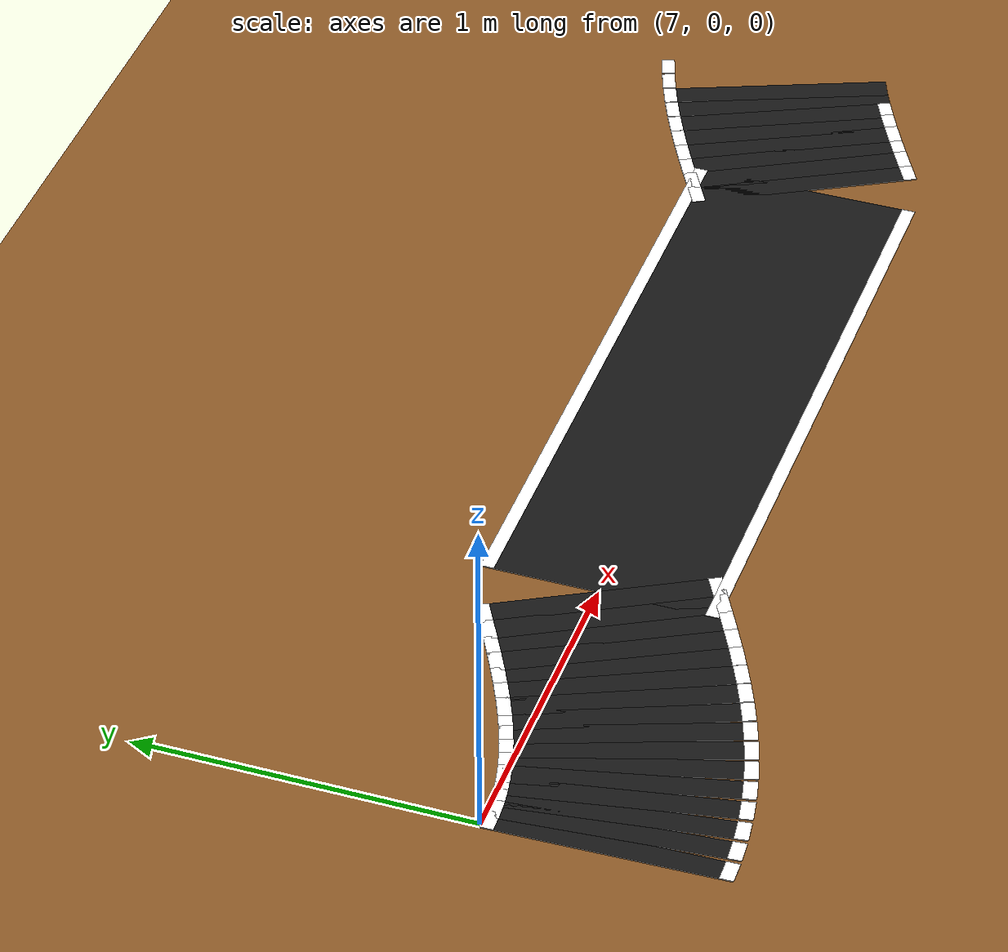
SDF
<sdf version="1.9">
 <world name="lka_world">
  <model name="ground_plane">
   <static>true</static>
   <link name="link">
    <collision name="col">
     <geometry><plane><normal>0 0 1</normal><size>100 100</size></plane></geometry>
     <surface><friction><ode><mu>0.8</mu><mu2>0.8</mu2></ode></friction></surface>
    </collision>
    <visual name="vis">
     <geometry><plane><normal>0 0 1</normal><size>100 100</size></plane></geometry>
     <material><ambient>0.45 0.28 0.10 1</ambient><diffuse>0.55 0.35 0.15 1</diffuse></material>
    </visual>
   </link>
  </model>
  <model name="c2_road_16">
   <static>true</static>
   <pose>7.031250 -0.349578 0.001000 0.000000 0.000000 0.026969</pose>
   <link name="link">
    <collision name="col">
     <geometry><box><size>0.068523 0.700000 0.002000</size></box></geometry>
     <surface><friction><ode><mu>1.0</mu><mu2>1.0</mu2></ode></friction></surface>
    </collision>
    <visual name="vis">
     <geometry><box><size>0.068523 0.700000 0.002000</size></box></geometry>
     <material><ambient>0.06 0.06 0.06 1</ambient><diffuse>0.09 0.09 0.09 1</diffuse></material>
    </visual>
   </link>
  </model>
  <model name="c2_left_16">
   <static>true</static>
   <pose>7.022351 -0.019698 0.002000 0.000000 0.000000 0.026969</pose>
   <link name="link">
    <collision name="col">
     <geometry><box><size>0.068523 0.040000 0.003000</size></box></geometry>
     <surface><friction><ode><mu>1.0</mu><mu2>1.0</mu2></ode></friction></surface>
    </collision>
    <visual name="vis">
     <geometry><box><size>0.068523 0.040000 0.003000</size></box></geometry>
     <material><ambient>1.0 1.0 1.0 1</ambient><diffuse>1.0 1.0 1.0 1</diffuse></material>
    </visual>
   </link>
  </model>
  <model name="c2_right_16">
   <static>true</static>
   <pose>7.040149 -0.679458 0.002000 0.000000 0.000000 0.026969</pose>
   <link name="link">
    <collision name="col">
     <geometry><box><size>0.068523 0.040000 0.003000</size></box></geometry>
     <surface><friction><ode><mu>1.0</mu><mu2>1.0</mu2></ode></friction></surface>
    </collision>
    <visual name="vis">
     <geometry><box><size>0.068523 0.040000 0.003000</size></box></geometry>
     <material><ambient>1.0 1.0 1.0 1</ambient><diffuse>1.0 1.0 1.0 1</diffuse></material>
    </visual>
   </link>
  </model>
  <model name="c2_road_17">
   <static>true</static>
   <pose>7.093750 -0.346212 0.001000 0.000000 0.000000 0.080494</pose>
   <link name="link">
    <collision name="col">
     <geometry><box><size>0.068703 0.700000 0.002000</size></box></geometry>
     <surface><friction><ode><mu>1.0</mu><mu2>1.0</mu2></ode></friction></surface>
    </collision>
    <visual name="vis">
     <geometry><box><size>0.068703 0.700000 0.002000</size></box></geometry>
     <material><ambient>0.06 0.06 0.06 1</ambient><diffuse>0.09 0.09 0.09 1</diffuse></material>
    </visual>
   </link>
  </model>
  <model name="c2_left_17">
   <static>true</static>
   <pose>7.067216 -0.017280 0.002000 0.000000 0.000000 0.080494</pose>
   <link name="link">
    <collision name="col">
     <geometry><box><size>0.068703 0.040000 0.003000</size></box></geometry>
     <surface><friction><ode><mu>1.0</mu><mu2>1.0</mu2></ode></friction></surface>
    </collision>
    <visual name="vis">
     <geometry><box><size>0.068703 0.040000 0.003000</size></box></geometry>
     <material><ambient>1.0 1.0 1.0 1</ambient><diffuse>1.0 1.0 1.0 1</diffuse></material>
    </visual>
   </link>
  </model>
  <model name="c2_right_17">
   <static>true</static>
   <pose>7.120284 -0.675143 0.002000 0.000000 0.000000 0.080494</pose>
   <link name="link">
    <collision name="col">
     <geometry><box><size>0.068703 0.040000 0.003000</size></box></geometry>
     <surface><friction><ode><mu>1.0</mu><mu2>1.0</mu2></ode></friction></surface>
    </collision>
    <visual name="vis">
     <geometry><box><size>0.068703 0.040000 0.003000</size></box></geometry>
     <material><ambient>1.0 1.0 1.0 1</ambient><diffuse>1.0 1.0 1.0 1</diffuse></material>
    </visual>
   </link>
  </model>
  <model name="c2_road_18">
   <static>true</static>
   <pose>7.156250 -0.339511 0.001000 0.000000 0.000000 0.132797</pose>
   <link name="link">
    <collision name="col">
     <geometry><box><size>0.069055 0.700000 0.002000</size></box></geometry>
     <surface><friction><ode><mu>1.0</mu><mu2>1.0</mu2></ode></friction></surface>
    </collision>
    <visual name="vis">
     <geometry><box><size>0.069055 0.700000 0.002000</size></box></geometry>
     <material><ambient>0.06 0.06 0.06 1</ambient><diffuse>0.09 0.09 0.09 1</diffuse></material>
    </visual>
   </link>
  </model>
  <model name="c2_left_18">
   <static>true</static>
   <pose>7.112556 -0.012416 0.002000 0.000000 0.000000 0.132797</pose>
   <link name="link">
    <collision name="col">
     <geometry><box><size>0.069055 0.040000 0.003000</size></box></geometry>
     <surface><friction><ode><mu>1.0</mu><mu2>1.0</mu2></ode></friction></surface>
    </collision>
    <visual name="vis">
     <geometry><box><size>0.069055 0.040000 0.003000</size></box></geometry>
     <material><ambient>1.0 1.0 1.0 1</ambient><diffuse>1.0 1.0 1.0 1</diffuse></material>
    </visual>
   </link>
  </model>
  <model name="c2_right_18">
   <static>true</static>
   <pose>7.199944 -0.666605 0.002000 0.000000 0.000000 0.132797</pose>
   <link name="link">
    <collision name="col">
     <geometry><box><size>0.069055 0.040000 0.003000</size></box></geometry>
     <surface><friction><ode><mu>1.0</mu><mu2>1.0</mu2></ode></friction></surface>
    </collision>
    <visual name="vis">
     <geometry><box><size>0.069055 0.040000 0.003000</size></box></geometry>
     <material><ambient>1.0 1.0 1.0 1</ambient><diffuse>1.0 1.0 1.0 1</diffuse></material>
    </visual>
   </link>
  </model>
  <model name="c2_road_19">
   <static>true</static>
   <pose>7.218750 -0.329540 0.001000 0.000000 0.000000 0.183137</pose>
   <link name="link">
    <collision name="col">
     <geometry><box><size>0.069562 0.700000 0.002000</size></box></geometry>
     <surface><friction><ode><mu>1.0</mu><mu2>1.0</mu2></ode></friction></surface>
    </collision>
    <visual name="vis">
     <geometry><box><size>0.069562 0.700000 0.002000</size></box></geometry>
     <material><ambient>0.06 0.06 0.06 1</ambient><diffuse>0.09 0.09 0.09 1</diffuse></material>
    </visual>
   </link>
  </model>
  <model name="c2_left_19">
   <static>true</static>
   <pose>7.158652 -0.005059 0.002000 0.000000 0.000000 0.183137</pose>
   <link name="link">
    <collision name="col">
     <geometry><box><size>0.069562 0.040000 0.003000</size></box></geometry>
     <surface><friction><ode><mu>1.0</mu><mu2>1.0</mu2></ode></friction></surface>
    </collision>
    <visual name="vis">
     <geometry><box><size>0.069562 0.040000 0.003000</size></box></geometry>
     <material><ambient>1.0 1.0 1.0 1</ambient><diffuse>1.0 1.0 1.0 1</diffuse></material>
    </visual>
   </link>
  </model>
  <model name="c2_right_19">
   <static>true</static>
   <pose>7.278848 -0.654022 0.002000 0.000000 0.000000 0.183137</pose>
   <link name="link">
    <collision name="col">
     <geometry><box><size>0.069562 0.040000 0.003000</size></box></geometry>
     <surface><friction><ode><mu>1.0</mu><mu2>1.0</mu2></ode></friction></surface>
    </collision>
    <visual name="vis">
     <geometry><box><size>0.069562 0.040000 0.003000</size></box></geometry>
     <material><ambient>1.0 1.0 1.0 1</ambient><diffuse>1.0 1.0 1.0 1</diffuse></material>
    </visual>
   </link>
  </model>
  <model name="c2_road_20">
   <static>true</static>
   <pose>7.281250 -0.316396 0.001000 0.000000 0.000000 0.230866</pose>
   <link name="link">
    <collision name="col">
     <geometry><box><size>0.070202 0.700000 0.002000</size></box></geometry>
     <surface><friction><ode><mu>1.0</mu><mu2>1.0</mu2></ode></friction></surface>
    </collision>
    <visual name="vis">
     <geometry><box><size>0.070202 0.700000 0.002000</size></box></geometry>
     <material><ambient>0.06 0.06 0.06 1</ambient><diffuse>0.09 0.09 0.09 1</diffuse></material>
    </visual>
   </link>
  </model>
  <model name="c2_left_20">
   <static>true</static>
   <pose>7.205739 0.004848 0.002000 0.000000 0.000000 0.230866</pose>
   <link name="link">
    <collision name="col">
     <geometry><box><size>0.070202 0.040000 0.003000</size></box></geometry>
     <surface><friction><ode><mu>1.0</mu><mu2>1.0</mu2></ode></friction></surface>
    </collision>
    <visual name="vis">
     <geometry><box><size>0.070202 0.040000 0.003000</size></box></geometry>
     <material><ambient>1.0 1.0 1.0 1</ambient><diffuse>1.0 1.0 1.0 1</diffuse></material>
    </visual>
   </link>
  </model>
  <model name="c2_right_20">
   <static>true</static>
   <pose>7.356761 -0.637641 0.002000 0.000000 0.000000 0.230866</pose>
   <link name="link">
    <collision name="col">
     <geometry><box><size>0.070202 0.040000 0.003000</size></box></geometry>
     <surface><friction><ode><mu>1.0</mu><mu2>1.0</mu2></ode></friction></surface>
    </collision>
    <visual name="vis">
     <geometry><box><size>0.070202 0.040000 0.003000</size></box></geometry>
     <material><ambient>1.0 1.0 1.0 1</ambient><diffuse>1.0 1.0 1.0 1</diffuse></material>
    </visual>
   </link>
  </model>
  <model name="c2_road_21">
   <static>true</static>
   <pose>7.343750 -0.300205 0.001000 0.000000 0.000000 0.275453</pose>
   <link name="link">
    <collision name="col">
     <geometry><box><size>0.070947 0.700000 0.002000</size></box></geometry>
     <surface><friction><ode><mu>1.0</mu><mu2>1.0</mu2></ode></friction></surface>
    </collision>
    <visual name="vis">
     <geometry><box><size>0.070947 0.700000 0.002000</size></box></geometry>
     <material><ambient>0.06 0.06 0.06 1</ambient><diffuse>0.09 0.09 0.09 1</diffuse></material>
    </visual>
   </link>
  </model>
  <model name="c2_left_21">
   <static>true</static>
   <pose>7.253996 0.017355 0.002000 0.000000 0.000000 0.275453</pose>
   <link name="link">
    <collision name="col">
     <geometry><box><size>0.070947 0.040000 0.003000</size></box></geometry>
     <surface><friction><ode><mu>1.0</mu><mu2>1.0</mu2></ode></friction></surface>
    </collision>
    <visual name="vis">
     <geometry><box><size>0.070947 0.040000 0.003000</size></box></geometry>
     <material><ambient>1.0 1.0 1.0 1</ambient><diffuse>1.0 1.0 1.0 1</diffuse></material>
    </visual>
   </link>
  </model>
  <model name="c2_right_21">
   <static>true</static>
   <pose>7.433504 -0.617765 0.002000 0.000000 0.000000 0.275453</pose>
   <link name="link">
    <collision name="col">
     <geometry><box><size>0.070947 0.040000 0.003000</size></box></geometry>
     <surface><friction><ode><mu>1.0</mu><mu2>1.0</mu2></ode></friction></surface>
    </collision>
    <visual name="vis">
     <geometry><box><size>0.070947 0.040000 0.003000</size></box></geometry>
     <material><ambient>1.0 1.0 1.0 1</ambient><diffuse>1.0 1.0 1.0 1</diffuse></material>
    </visual>
   </link>
  </model>
  <model name="c2_road_22">
   <static>true</static>
   <pose>7.406250 -0.281123 0.001000 0.000000 0.000000 0.316489</pose>
   <link name="link">
    <collision name="col">
     <geometry><box><size>0.071764 0.700000 0.002000</size></box></geometry>
     <surface><friction><ode><mu>1.0</mu><mu2>1.0</mu2></ode></friction></surface>
    </collision>
    <visual name="vis">
     <geometry><box><size>0.071764 0.700000 0.002000</size></box></geometry>
     <material><ambient>0.06 0.06 0.06 1</ambient><diffuse>0.09 0.09 0.09 1</diffuse></material>
    </visual>
   </link>
  </model>
  <model name="c2_left_22">
   <static>true</static>
   <pose>7.303543 0.032488 0.002000 0.000000 0.000000 0.316489</pose>
   <link name="link">
    <collision name="col">
     <geometry><box><size>0.071764 0.040000 0.003000</size></box></geometry>
     <surface><friction><ode><mu>1.0</mu><mu2>1.0</mu2></ode></friction></surface>
    </collision>
    <visual name="vis">
     <geometry><box><size>0.071764 0.040000 0.003000</size></box></geometry>
     <material><ambient>1.0 1.0 1.0 1</ambient><diffuse>1.0 1.0 1.0 1</diffuse></material>
    </visual>
   </link>
  </model>
  <model name="c2_right_22">
   <static>true</static>
   <pose>7.508957 -0.594733 0.002000 0.000000 0.000000 0.316489</pose>
   <link name="link">
    <collision name="col">
     <geometry><box><size>0.071764 0.040000 0.003000</size></box></geometry>
     <surface><friction><ode><mu>1.0</mu><mu2>1.0</mu2></ode></friction></surface>
    </collision>
    <visual name="vis">
     <geometry><box><size>0.071764 0.040000 0.003000</size></box></geometry>
     <material><ambient>1.0 1.0 1.0 1</ambient><diffuse>1.0 1.0 1.0 1</diffuse></material>
    </visual>
   </link>
  </model>
  <model name="c2_road_23">
   <static>true</static>
   <pose>7.468750 -0.259333 0.001000 0.000000 0.000000 0.353679</pose>
   <link name="link">
    <collision name="col">
     <geometry><box><size>0.072621 0.700000 0.002000</size></box></geometry>
     <surface><friction><ode><mu>1.0</mu><mu2>1.0</mu2></ode></friction></surface>
    </collision>
    <visual name="vis">
     <geometry><box><size>0.072621 0.700000 0.002000</size></box></geometry>
     <material><ambient>0.06 0.06 0.06 1</ambient><diffuse>0.09 0.09 0.09 1</diffuse></material>
    </visual>
   </link>
  </model>
  <model name="c2_left_23">
   <static>true</static>
   <pose>7.354454 0.050242 0.002000 0.000000 0.000000 0.353679</pose>
   <link name="link">
    <collision name="col">
     <geometry><box><size>0.072621 0.040000 0.003000</size></box></geometry>
     <surface><friction><ode><mu>1.0</mu><mu2>1.0</mu2></ode></friction></surface>
    </collision>
    <visual name="vis">
     <geometry><box><size>0.072621 0.040000 0.003000</size></box></geometry>
     <material><ambient>1.0 1.0 1.0 1</ambient><diffuse>1.0 1.0 1.0 1</diffuse></material>
    </visual>
   </link>
  </model>
  <model name="c2_right_23">
   <static>true</static>
   <pose>7.583046 -0.568908 0.002000 0.000000 0.000000 0.353679</pose>
   <link name="link">
    <collision name="col">
     <geometry><box><size>0.072621 0.040000 0.003000</size></box></geometry>
     <surface><friction><ode><mu>1.0</mu><mu2>1.0</mu2></ode></friction></surface>
    </collision>
    <visual name="vis">
     <geometry><box><size>0.072621 0.040000 0.003000</size></box></geometry>
     <material><ambient>1.0 1.0 1.0 1</ambient><diffuse>1.0 1.0 1.0 1</diffuse></material>
    </visual>
   </link>
  </model>
  <model name="c2_road_24">
   <static>true</static>
   <pose>7.531250 -0.235046 0.001000 0.000000 0.000000 0.386829</pose>
   <link name="link">
    <collision name="col">
     <geometry><box><size>0.073483 0.700000 0.002000</size></box></geometry>
     <surface><friction><ode><mu>1.0</mu><mu2>1.0</mu2></ode></friction></surface>
    </collision>
    <visual name="vis">
     <geometry><box><size>0.073483 0.700000 0.002000</size></box></geometry>
     <material><ambient>0.06 0.06 0.06 1</ambient><diffuse>0.09 0.09 0.09 1</diffuse></material>
    </visual>
   </link>
  </model>
  <model name="c2_left_24">
   <static>true</static>
   <pose>7.406756 0.070571 0.002000 0.000000 0.000000 0.386829</pose>
   <link name="link">
    <collision name="col">
     <geometry><box><size>0.073483 0.040000 0.003000</size></box></geometry>
     <surface><friction><ode><mu>1.0</mu><mu2>1.0</mu2></ode></friction></surface>
    </collision>
    <visual name="vis">
     <geometry><box><size>0.073483 0.040000 0.003000</size></box></geometry>
     <material><ambient>1.0 1.0 1.0 1</ambient><diffuse>1.0 1.0 1.0 1</diffuse></material>
    </visual>
   </link>
  </model>
  <model name="c2_right_24">
   <static>true</static>
   <pose>7.655744 -0.540662 0.002000 0.000000 0.000000 0.386829</pose>
   <link name="link">
    <collision name="col">
     <geometry><box><size>0.073483 0.040000 0.003000</size></box></geometry>
     <surface><friction><ode><mu>1.0</mu><mu2>1.0</mu2></ode></friction></surface>
    </collision>
    <visual name="vis">
     <geometry><box><size>0.073483 0.040000 0.003000</size></box></geometry>
     <material><ambient>1.0 1.0 1.0 1</ambient><diffuse>1.0 1.0 1.0 1</diffuse></material>
    </visual>
   </link>
  </model>
  <model name="c2_road_25">
   <static>true</static>
   <pose>7.593750 -0.208495 0.001000 0.000000 0.000000 0.415829</pose>
   <link name="link">
    <collision name="col">
     <geometry><box><size>0.074318 0.700000 0.002000</size></box></geometry>
     <surface><friction><ode><mu>1.0</mu><mu2>1.0</mu2></ode></friction></surface>
    </collision>
    <visual name="vis">
     <geometry><box><size>0.074318 0.700000 0.002000</size></box></geometry>
     <material><ambient>0.06 0.06 0.06 1</ambient><diffuse>0.09 0.09 0.09 1</diffuse></material>
    </visual>
   </link>
  </model>
  <model name="c2_left_25">
   <static>true</static>
   <pose>7.460447 0.093383 0.002000 0.000000 0.000000 0.415829</pose>
   <link name="link">
    <collision name="col">
     <geometry><box><size>0.074318 0.040000 0.003000</size></box></geometry>
     <surface><friction><ode><mu>1.0</mu><mu2>1.0</mu2></ode></friction></surface>
    </collision>
    <visual name="vis">
     <geometry><box><size>0.074318 0.040000 0.003000</size></box></geometry>
     <material><ambient>1.0 1.0 1.0 1</ambient><diffuse>1.0 1.0 1.0 1</diffuse></material>
    </visual>
   </link>
  </model>
  <model name="c2_right_25">
   <static>true</static>
   <pose>7.727053 -0.510373 0.002000 0.000000 0.000000 0.415829</pose>
   <link name="link">
    <collision name="col">
     <geometry><box><size>0.074318 0.040000 0.003000</size></box></geometry>
     <surface><friction><ode><mu>1.0</mu><mu2>1.0</mu2></ode></friction></surface>
    </collision>
    <visual name="vis">
     <geometry><box><size>0.074318 0.040000 0.003000</size></box></geometry>
     <material><ambient>1.0 1.0 1.0 1</ambient><diffuse>1.0 1.0 1.0 1</diffuse></material>
    </visual>
   </link>
  </model>
  <model name="c2_road_26">
   <static>true</static>
   <pose>7.656250 -0.179936 0.001000 0.000000 0.000000 0.440632</pose>
   <link name="link">
    <collision name="col">
     <geometry><box><size>0.075095 0.700000 0.002000</size></box></geometry>
     <surface><friction><ode><mu>1.0</mu><mu2>1.0</mu2></ode></friction></surface>
    </collision>
    <visual name="vis">
     <geometry><box><size>0.075095 0.700000 0.002000</size></box></geometry>
     <material><ambient>0.06 0.06 0.06 1</ambient><diffuse>0.09 0.09 0.09 1</diffuse></material>
    </visual>
   </link>
  </model>
  <model name="c2_left_26">
   <static>true</static>
   <pose>7.515501 0.118543 0.002000 0.000000 0.000000 0.440632</pose>
   <link name="link">
    <collision name="col">
     <geometry><box><size>0.075095 0.040000 0.003000</size></box></geometry>
     <surface><friction><ode><mu>1.0</mu><mu2>1.0</mu2></ode></friction></surface>
    </collision>
    <visual name="vis">
     <geometry><box><size>0.075095 0.040000 0.003000</size></box></geometry>
     <material><ambient>1.0 1.0 1.0 1</ambient><diffuse>1.0 1.0 1.0 1</diffuse></material>
    </visual>
   </link>
  </model>
  <model name="c2_right_26">
   <static>true</static>
   <pose>7.796999 -0.478415 0.002000 0.000000 0.000000 0.440632</pose>
   <link name="link">
    <collision name="col">
     <geometry><box><size>0.075095 0.040000 0.003000</size></box></geometry>
     <surface><friction><ode><mu>1.0</mu><mu2>1.0</mu2></ode></friction></surface>
    </collision>
    <visual name="vis">
     <geometry><box><size>0.075095 0.040000 0.003000</size></box></geometry>
     <material><ambient>1.0 1.0 1.0 1</ambient><diffuse>1.0 1.0 1.0 1</diffuse></material>
    </visual>
   </link>
  </model>
  <model name="c2_road_27">
   <static>true</static>
   <pose>7.718750 -0.149644 0.001000 0.000000 0.000000 0.461234</pose>
   <link name="link">
    <collision name="col">
     <geometry><box><size>0.075788 0.700000 0.002000</size></box></geometry>
     <surface><friction><ode><mu>1.0</mu><mu2>1.0</mu2></ode></friction></surface>
    </collision>
    <visual name="vis">
     <geometry><box><size>0.075788 0.700000 0.002000</size></box></geometry>
     <material><ambient>0.06 0.06 0.06 1</ambient><diffuse>0.09 0.09 0.09 1</diffuse></material>
    </visual>
   </link>
  </model>
  <model name="c2_left_27">
   <static>true</static>
   <pose>7.571882 0.145872 0.002000 0.000000 0.000000 0.461234</pose>
   <link name="link">
    <collision name="col">
     <geometry><box><size>0.075788 0.040000 0.003000</size></box></geometry>
     <surface><friction><ode><mu>1.0</mu><mu2>1.0</mu2></ode></friction></surface>
    </collision>
    <visual name="vis">
     <geometry><box><size>0.075788 0.040000 0.003000</size></box></geometry>
     <material><ambient>1.0 1.0 1.0 1</ambient><diffuse>1.0 1.0 1.0 1</diffuse></material>
    </visual>
   </link>
  </model>
  <model name="c2_right_27">
   <static>true</static>
   <pose>7.865618 -0.445161 0.002000 0.000000 0.000000 0.461234</pose>
   <link name="link">
    <collision name="col">
     <geometry><box><size>0.075788 0.040000 0.003000</size></box></geometry>
     <surface><friction><ode><mu>1.0</mu><mu2>1.0</mu2></ode></friction></surface>
    </collision>
    <visual name="vis">
     <geometry><box><size>0.075788 0.040000 0.003000</size></box></geometry>
     <material><ambient>1.0 1.0 1.0 1</ambient><diffuse>1.0 1.0 1.0 1</diffuse></material>
    </visual>
   </link>
  </model>
  <model name="c2_road_28">
   <static>true</static>
   <pose>7.781250 -0.117911 0.001000 0.000000 0.000000 0.477654</pose>
   <link name="link">
    <collision name="col">
     <geometry><box><size>0.076371 0.700000 0.002000</size></box></geometry>
     <surface><friction><ode><mu>1.0</mu><mu2>1.0</mu2></ode></friction></surface>
    </collision>
    <visual name="vis">
     <geometry><box><size>0.076371 0.700000 0.002000</size></box></geometry>
     <material><ambient>0.06 0.06 0.06 1</ambient><diffuse>0.09 0.09 0.09 1</diffuse></material>
    </visual>
   </link>
  </model>
  <model name="c2_left_28">
   <static>true</static>
   <pose>7.629550 0.175154 0.002000 0.000000 0.000000 0.477654</pose>
   <link name="link">
    <collision name="col">
     <geometry><box><size>0.076371 0.040000 0.003000</size></box></geometry>
     <surface><friction><ode><mu>1.0</mu><mu2>1.0</mu2></ode></friction></surface>
    </collision>
    <visual name="vis">
     <geometry><box><size>0.076371 0.040000 0.003000</size></box></geometry>
     <material><ambient>1.0 1.0 1.0 1</ambient><diffuse>1.0 1.0 1.0 1</diffuse></material>
    </visual>
   </link>
  </model>
  <model name="c2_right_28">
   <static>true</static>
   <pose>7.932950 -0.410976 0.002000 0.000000 0.000000 0.477654</pose>
   <link name="link">
    <collision name="col">
     <geometry><box><size>0.076371 0.040000 0.003000</size></box></geometry>
     <surface><friction><ode><mu>1.0</mu><mu2>1.0</mu2></ode></friction></surface>
    </collision>
    <visual name="vis">
     <geometry><box><size>0.076371 0.040000 0.003000</size></box></geometry>
     <material><ambient>1.0 1.0 1.0 1</ambient><diffuse>1.0 1.0 1.0 1</diffuse></material>
    </visual>
   </link>
  </model>
  <model name="c2_road_29">
   <static>true</static>
   <pose>7.843750 -0.085043 0.001000 0.000000 0.000000 0.489927</pose>
   <link name="link">
    <collision name="col">
     <geometry><box><size>0.076826 0.700000 0.002000</size></box></geometry>
     <surface><friction><ode><mu>1.0</mu><mu2>1.0</mu2></ode></friction></surface>
    </collision>
    <visual name="vis">
     <geometry><box><size>0.076826 0.700000 0.002000</size></box></geometry>
     <material><ambient>0.06 0.06 0.06 1</ambient><diffuse>0.09 0.09 0.09 1</diffuse></material>
    </visual>
   </link>
  </model>
  <model name="c2_left_29">
   <static>true</static>
   <pose>7.688465 0.206138 0.002000 0.000000 0.000000 0.489927</pose>
   <link name="link">
    <collision name="col">
     <geometry><box><size>0.076826 0.040000 0.003000</size></box></geometry>
     <surface><friction><ode><mu>1.0</mu><mu2>1.0</mu2></ode></friction></surface>
    </collision>
    <visual name="vis">
     <geometry><box><size>0.076826 0.040000 0.003000</size></box></geometry>
     <material><ambient>1.0 1.0 1.0 1</ambient><diffuse>1.0 1.0 1.0 1</diffuse></material>
    </visual>
   </link>
  </model>
  <model name="c2_right_29">
   <static>true</static>
   <pose>7.999035 -0.376224 0.002000 0.000000 0.000000 0.489927</pose>
   <link name="link">
    <collision name="col">
     <geometry><box><size>0.076826 0.040000 0.003000</size></box></geometry>
     <surface><friction><ode><mu>1.0</mu><mu2>1.0</mu2></ode></friction></surface>
    </collision>
    <visual name="vis">
     <geometry><box><size>0.076826 0.040000 0.003000</size></box></geometry>
     <material><ambient>1.0 1.0 1.0 1</ambient><diffuse>1.0 1.0 1.0 1</diffuse></material>
    </visual>
   </link>
  </model>
  <model name="c2_road_30">
   <static>true</static>
   <pose>7.906250 -0.051356 0.001000 0.000000 0.000000 0.498086</pose>
   <link name="link">
    <collision name="col">
     <geometry><box><size>0.077138 0.700000 0.002000</size></box></geometry>
     <surface><friction><ode><mu>1.0</mu><mu2>1.0</mu2></ode></friction></surface>
    </collision>
    <visual name="vis">
     <geometry><box><size>0.077138 0.700000 0.002000</size></box></geometry>
     <material><ambient>0.06 0.06 0.06 1</ambient><diffuse>0.09 0.09 0.09 1</diffuse></material>
    </visual>
   </link>
  </model>
  <model name="c2_left_30">
   <static>true</static>
   <pose>7.748594 0.238549 0.002000 0.000000 0.000000 0.498086</pose>
   <link name="link">
    <collision name="col">
     <geometry><box><size>0.077138 0.040000 0.003000</size></box></geometry>
     <surface><friction><ode><mu>1.0</mu><mu2>1.0</mu2></ode></friction></surface>
    </collision>
    <visual name="vis">
     <geometry><box><size>0.077138 0.040000 0.003000</size></box></geometry>
     <material><ambient>1.0 1.0 1.0 1</ambient><diffuse>1.0 1.0 1.0 1</diffuse></material>
    </visual>
   </link>
  </model>
  <model name="c2_right_30">
   <static>true</static>
   <pose>8.063906 -0.341260 0.002000 0.000000 0.000000 0.498086</pose>
   <link name="link">
    <collision name="col">
     <geometry><box><size>0.077138 0.040000 0.003000</size></box></geometry>
     <surface><friction><ode><mu>1.0</mu><mu2>1.0</mu2></ode></friction></surface>
    </collision>
    <visual name="vis">
     <geometry><box><size>0.077138 0.040000 0.003000</size></box></geometry>
     <material><ambient>1.0 1.0 1.0 1</ambient><diffuse>1.0 1.0 1.0 1</diffuse></material>
    </visual>
   </link>
  </model>
  <model name="c2_road_31">
   <static>true</static>
   <pose>7.968750 -0.017174 0.001000 0.000000 0.000000 0.502158</pose>
   <link name="link">
    <collision name="col">
     <geometry><box><size>0.077296 0.700000 0.002000</size></box></geometry>
     <surface><friction><ode><mu>1.0</mu><mu2>1.0</mu2></ode></friction></surface>
    </collision>
    <visual name="vis">
     <geometry><box><size>0.077296 0.700000 0.002000</size></box></geometry>
     <material><ambient>0.06 0.06 0.06 1</ambient><diffuse>0.09 0.09 0.09 1</diffuse></material>
    </visual>
   </link>
  </model>
  <model name="c2_left_31">
   <static>true</static>
   <pose>7.809915 0.272086 0.002000 0.000000 0.000000 0.502158</pose>
   <link name="link">
    <collision name="col">
     <geometry><box><size>0.077296 0.040000 0.003000</size></box></geometry>
     <surface><friction><ode><mu>1.0</mu><mu2>1.0</mu2></ode></friction></surface>
    </collision>
    <visual name="vis">
     <geometry><box><size>0.077296 0.040000 0.003000</size></box></geometry>
     <material><ambient>1.0 1.0 1.0 1</ambient><diffuse>1.0 1.0 1.0 1</diffuse></material>
    </visual>
   </link>
  </model>
  <model name="c2_right_31">
   <static>true</static>
   <pose>8.127585 -0.306434 0.002000 0.000000 0.000000 0.502158</pose>
   <link name="link">
    <collision name="col">
     <geometry><box><size>0.077296 0.040000 0.003000</size></box></geometry>
     <surface><friction><ode><mu>1.0</mu><mu2>1.0</mu2></ode></friction></surface>
    </collision>
    <visual name="vis">
     <geometry><box><size>0.077296 0.040000 0.003000</size></box></geometry>
     <material><ambient>1.0 1.0 1.0 1</ambient><diffuse>1.0 1.0 1.0 1</diffuse></material>
    </visual>
   </link>
  </model>
  <model name="s3_road">
   <static>true</static>
   <pose>9.000000 0.000000 0.001000 0.000000 0.000000 0.000000</pose>
   <link name="link">
    <collision name="col">
     <geometry><box><size>2.000000 0.700000 0.002000</size></box></geometry>
     <surface><friction><ode><mu>1.0</mu><mu2>1.0</mu2></ode></friction></surface>
    </collision>
    <visual name="vis">
     <geometry><box><size>2.000000 0.700000 0.002000</size></box></geometry>
     <material><ambient>0.06 0.06 0.06 1</ambient><diffuse>0.09 0.09 0.09 1</diffuse></material>
    </visual>
   </link>
  </model>
  <model name="s3_left">
   <static>true</static>
   <pose>9.000000 0.330000 0.002000 0.000000 0.000000 0.000000</pose>
   <link name="link">
    <collision name="col">
     <geometry><box><size>2.000000 0.040000 0.003000</size></box></geometry>
     <surface><friction><ode><mu>1.0</mu><mu2>1.0</mu2></ode></friction></surface>
    </collision>
    <visual name="vis">
     <geometry><box><size>2.000000 0.040000 0.003000</size></box></geometry>
     <material><ambient>1.0 1.0 1.0 1</ambient><diffuse>1.0 1.0 1.0 1</diffuse></material>
    </visual>
   </link>
  </model>
  <model name="s3_right">
   <static>true</static>
   <pose>9.000000 -0.330000 0.002000 0.000000 0.000000 0.000000</pose>
   <link name="link">
    <collision name="col">
     <geometry><box><size>2.000000 0.040000 0.003000</size></box></geometry>
     <surface><friction><ode><mu>1.0</mu><mu2>1.0</mu2></ode></friction></surface>
    </collision>
    <visual name="vis">
     <geometry><box><size>2.000000 0.040000 0.003000</size></box></geometry>
     <material><ambient>1.0 1.0 1.0 1</ambient><diffuse>1.0 1.0 1.0 1</diffuse></material>
    </visual>
   </link>
  </model>
  <model name="c3_road_0">
   <static>true</static>
   <pose>10.031250 0.017174 0.001000 0.000000 0.000000 0.502158</pose>
   <link name="link">
    <collision name="col">
     <geometry><box><size>0.077296 0.700000 0.002000</size></box></geometry>
     <surface><friction><ode><mu>1.0</mu><mu2>1.0</mu2></ode></friction></surface>
    </collision>
    <visual name="vis">
     <geometry><box><size>0.077296 0.700000 0.002000</size></box></geometry>
     <material><ambient>0.06 0.06 0.06 1</ambient><diffuse>0.09 0.09 0.09 1</diffuse></material>
    </visual>
   </link>
  </model>
  <model name="c3_left_0">
   <static>true</static>
   <pose>9.872415 0.306434 0.002000 0.000000 0.000000 0.502158</pose>
   <link name="link">
    <collision name="col">
     <geometry><box><size>0.077296 0.040000 0.003000</size></box></geometry>
     <surface><friction><ode><mu>1.0</mu><mu2>1.0</mu2></ode></friction></surface>
    </collision>
    <visual name="vis">
     <geometry><box><size>0.077296 0.040000 0.003000</size></box></geometry>
     <material><ambient>1.0 1.0 1.0 1</ambient><diffuse>1.0 1.0 1.0 1</diffuse></material>
    </visual>
   </link>
  </model>
  <model name="c3_right_0">
   <static>true</static>
   <pose>10.190085 -0.272086 0.002000 0.000000 0.000000 0.502158</pose>
   <link name="link">
    <collision name="col">
     <geometry><box><size>0.077296 0.040000 0.003000</size></box></geometry>
     <surface><friction><ode><mu>1.0</mu><mu2>1.0</mu2></ode></friction></surface>
    </collision>
    <visual name="vis">
     <geometry><box><size>0.077296 0.040000 0.003000</size></box></geometry>
     <material><ambient>1.0 1.0 1.0 1</ambient><diffuse>1.0 1.0 1.0 1</diffuse></material>
    </visual>
   </link>
  </model>
  <model name="c3_road_1">
   <static>true</static>
   <pose>10.093750 0.051356 0.001000 0.000000 0.000000 0.498086</pose>
   <link name="link">
    <collision name="col">
     <geometry><box><size>0.077138 0.700000 0.002000</size></box></geometry>
     <surface><friction><ode><mu>1.0</mu><mu2>1.0</mu2></ode></friction></surface>
    </collision>
    <visual name="vis">
     <geometry><box><size>0.077138 0.700000 0.002000</size></box></geometry>
     <material><ambient>0.06 0.06 0.06 1</ambient><diffuse>0.09 0.09 0.09 1</diffuse></material>
    </visual>
   </link>
  </model>
  <model name="c3_left_1">
   <static>true</static>
   <pose>9.936094 0.341260 0.002000 0.000000 0.000000 0.498086</pose>
   <link name="link">
    <collision name="col">
     <geometry><box><size>0.077138 0.040000 0.003000</size></box></geometry>
     <surface><friction><ode><mu>1.0</mu><mu2>1.0</mu2></ode></friction></surface>
    </collision>
    <visual name="vis">
     <geometry><box><size>0.077138 0.040000 0.003000</size></box></geometry>
     <material><ambient>1.0 1.0 1.0 1</ambient><diffuse>1.0 1.0 1.0 1</diffuse></material>
    </visual>
   </link>
  </model>
  <model name="c3_right_1">
   <static>true</static>
   <pose>10.251406 -0.238549 0.002000 0.000000 0.000000 0.498086</pose>
   <link name="link">
    <collision name="col">
     <geometry><box><size>0.077138 0.040000 0.003000</size></box></geometry>
     <surface><friction><ode><mu>1.0</mu><mu2>1.0</mu2></ode></friction></surface>
    </collision>
    <visual name="vis">
     <geometry><box><size>0.077138 0.040000 0.003000</size></box></geometry>
     <material><ambient>1.0 1.0 1.0 1</ambient><diffuse>1.0 1.0 1.0 1</diffuse></material>
    </visual>
   </link>
  </model>
  <model name="c3_road_2">
   <static>true</static>
   <pose>10.156250 0.085043 0.001000 0.000000 0.000000 0.489927</pose>
   <link name="link">
    <collision name="col">
     <geometry><box><size>0.076826 0.700000 0.002000</size></box></geometry>
     <surface><friction><ode><mu>1.0</mu><mu2>1.0</mu2></ode></friction></surface>
    </collision>
    <visual name="vis">
     <geometry><box><size>0.076826 0.700000 0.002000</size></box></geometry>
     <material><ambient>0.06 0.06 0.06 1</ambient><diffuse>0.09 0.09 0.09 1</diffuse></material>
    </visual>
   </link>
  </model>
  <model name="c3_left_2">
   <static>true</static>
   <pose>10.000965 0.376224 0.002000 0.000000 0.000000 0.489927</pose>
   <link name="link">
    <collision name="col">
     <geometry><box><size>0.076826 0.040000 0.003000</size></box></geometry>
     <surface><friction><ode><mu>1.0</mu><mu2>1.0</mu2></ode></friction></surface>
    </collision>
    <visual name="vis">
     <geometry><box><size>0.076826 0.040000 0.003000</size></box></geometry>
     <material><ambient>1.0 1.0 1.0 1</ambient><diffuse>1.0 1.0 1.0 1</diffuse></material>
    </visual>
   </link>
  </model>
  <model name="c3_right_2">
   <static>true</static>
   <pose>10.311535 -0.206138 0.002000 0.000000 0.000000 0.489927</pose>
   <link name="link">
    <collision name="col">
     <geometry><box><size>0.076826 0.040000 0.003000</size></box></geometry>
     <surface><friction><ode><mu>1.0</mu><mu2>1.0</mu2></ode></friction></surface>
    </collision>
    <visual name="vis">
     <geometry><box><size>0.076826 0.040000 0.003000</size></box></geometry>
     <material><ambient>1.0 1.0 1.0 1</ambient><diffuse>1.0 1.0 1.0 1</diffuse></material>
    </visual>
   </link>
  </model>
  <model name="c3_road_3">
   <static>true</static>
   <pose>10.218750 0.117911 0.001000 0.000000 0.000000 0.477654</pose>
   <link name="link">
    <collision name="col">
     <geometry><box><size>0.076371 0.700000 0.002000</size></box></geometry>
     <surface><friction><ode><mu>1.0</mu><mu2>1.0</mu2></ode></friction></surface>
    </collision>
    <visual name="vis">
     <geometry><box><size>0.076371 0.700000 0.002000</size></box></geometry>
     <material><ambient>0.06 0.06 0.06 1</ambient><diffuse>0.09 0.09 0.09 1</diffuse></material>
    </visual>
   </link>
  </model>
  <model name="c3_left_3">
   <static>true</static>
   <pose>10.067050 0.410976 0.002000 0.000000 0.000000 0.477654</pose>
   <link name="link">
    <collision name="col">
     <geometry><box><size>0.076371 0.040000 0.003000</size></box></geometry>
     <surface><friction><ode><mu>1.0</mu><mu2>1.0</mu2></ode></friction></surface>
    </collision>
    <visual name="vis">
     <geometry><box><size>0.076371 0.040000 0.003000</size></box></geometry>
     <material><ambient>1.0 1.0 1.0 1</ambient><diffuse>1.0 1.0 1.0 1</diffuse></material>
    </visual>
   </link>
  </model>
  <model name="c3_right_3">
   <static>true</static>
   <pose>10.370450 -0.175154 0.002000 0.000000 0.000000 0.477654</pose>
   <link name="link">
    <collision name="col">
     <geometry><box><size>0.076371 0.040000 0.003000</size></box></geometry>
     <surface><friction><ode><mu>1.0</mu><mu2>1.0</mu2></ode></friction></surface>
    </collision>
    <visual name="vis">
     <geometry><box><size>0.076371 0.040000 0.003000</size></box></geometry>
     <material><ambient>1.0 1.0 1.0 1</ambient><diffuse>1.0 1.0 1.0 1</diffuse></material>
    </visual>
   </link>
  </model>
  <model name="c3_road_4">
   <static>true</static>
   <pose>10.281250 0.149644 0.001000 0.000000 0.000000 0.461234</pose>
   <link name="link">
    <collision name="col">
     <geometry><box><size>0.075788 0.700000 0.002000</size></box></geometry>
     <surface><friction><ode><mu>1.0</mu><mu2>1.0</mu2></ode></friction></surface>
    </collision>
    <visual name="vis">
     <geometry><box><size>0.075788 0.700000 0.002000</size></box></geometry>
     <material><ambient>0.06 0.06 0.06 1</ambient><diffuse>0.09 0.09 0.09 1</diffuse></material>
    </visual>
   </link>
  </model>
  <model name="c3_left_4">
   <static>true</static>
   <pose>10.134382 0.445161 0.002000 0.000000 0.000000 0.461234</pose>
   <link name="link">
    <collision name="col">
     <geometry><box><size>0.075788 0.040000 0.003000</size></box></geometry>
     <surface><friction><ode><mu>1.0</mu><mu2>1.0</mu2></ode></friction></surface>
    </collision>
    <visual name="vis">
     <geometry><box><size>0.075788 0.040000 0.003000</size></box></geometry>
     <material><ambient>1.0 1.0 1.0 1</ambient><diffuse>1.0 1.0 1.0 1</diffuse></material>
    </visual>
   </link>
  </model>
  <model name="c3_right_4">
   <static>true</static>
   <pose>10.428118 -0.145872 0.002000 0.000000 0.000000 0.461234</pose>
   <link name="link">
    <collision name="col">
     <geometry><box><size>0.075788 0.040000 0.003000</size></box></geometry>
     <surface><friction><ode><mu>1.0</mu><mu2>1.0</mu2></ode></friction></surface>
    </collision>
    <visual name="vis">
     <geometry><box><size>0.075788 0.040000 0.003000</size></box></geometry>
     <material><ambient>1.0 1.0 1.0 1</ambient><diffuse>1.0 1.0 1.0 1</diffuse></material>
    </visual>
   </link>
  </model>
  <model name="c3_road_5">
   <static>true</static>
   <pose>10.343750 0.179936 0.001000 0.000000 0.000000 0.440632</pose>
   <link name="link">
    <collision name="col">
     <geometry><box><size>0.075095 0.700000 0.002000</size></box></geometry>
     <surface><friction><ode><mu>1.0</mu><mu2>1.0</mu2></ode></friction></surface>
    </collision>
    <visual name="vis">
     <geometry><box><size>0.075095 0.700000 0.002000</size></box></geometry>
     <material><ambient>0.06 0.06 0.06 1</ambient><diffuse>0.09 0.09 0.09 1</diffuse></material>
    </visual>
   </link>
  </model>
  <model name="c3_left_5">
   <static>true</static>
   <pose>10.203001 0.478415 0.002000 0.000000 0.000000 0.440632</pose>
   <link name="link">
    <collision name="col">
     <geometry><box><size>0.075095 0.040000 0.003000</size></box></geometry>
     <surface><friction><ode><mu>1.0</mu><mu2>1.0</mu2></ode></friction></surface>
    </collision>
    <visual name="vis">
     <geometry><box><size>0.075095 0.040000 0.003000</size></box></geometry>
     <material><ambient>1.0 1.0 1.0 1</ambient><diffuse>1.0 1.0 1.0 1</diffuse></material>
    </visual>
   </link>
  </model>
  <model name="c3_right_5">
   <static>true</static>
   <pose>10.484499 -0.118543 0.002000 0.000000 0.000000 0.440632</pose>
   <link name="link">
    <collision name="col">
     <geometry><box><size>0.075095 0.040000 0.003000</size></box></geometry>
     <surface><friction><ode><mu>1.0</mu><mu2>1.0</mu2></ode></friction></surface>
    </collision>
    <visual name="vis">
     <geometry><box><size>0.075095 0.040000 0.003000</size></box></geometry>
     <material><ambient>1.0 1.0 1.0 1</ambient><diffuse>1.0 1.0 1.0 1</diffuse></material>
    </visual>
   </link>
  </model>
  <model name="c3_road_6">
   <static>true</static>
   <pose>10.406250 0.208495 0.001000 0.000000 0.000000 0.415829</pose>
   <link name="link">
    <collision name="col">
     <geometry><box><size>0.074318 0.700000 0.002000</size></box></geometry>
     <surface><friction><ode><mu>1.0</mu><mu2>1.0</mu2></ode></friction></surface>
    </collision>
    <visual name="vis">
     <geometry><box><size>0.074318 0.700000 0.002000</size></box></geometry>
     <material><ambient>0.06 0.06 0.06 1</ambient><diffuse>0.09 0.09 0.09 1</diffuse></material>
    </visual>
   </link>
  </model>
  <model name="c3_left_6">
   <static>true</static>
   <pose>10.272947 0.510373 0.002000 0.000000 0.000000 0.415829</pose>
   <link name="link">
    <collision name="col">
     <geometry><box><size>0.074318 0.040000 0.003000</size></box></geometry>
     <surface><friction><ode><mu>1.0</mu><mu2>1.0</mu2></ode></friction></surface>
    </collision>
    <visual name="vis">
     <geometry><box><size>0.074318 0.040000 0.003000</size></box></geometry>
     <material><ambient>1.0 1.0 1.0 1</ambient><diffuse>1.0 1.0 1.0 1</diffuse></material>
    </visual>
   </link>
  </model>
  <model name="c3_road_7">
   <static>true</static>
   <pose>10.468750 0.235046 0.001000 0.000000 0.000000 0.386829</pose>
   <link name="link">
    <collision name="col">
     <geometry><box><size>0.073483 0.700000 0.002000</size></box></geometry>
     <surface><friction><ode><mu>1.0</mu><mu2>1.0</mu2></ode></friction></surface>
    </collision>
    <visual name="vis">
     <geometry><box><size>0.073483 0.700000 0.002000</size></box></geometry>
     <material><ambient>0.06 0.06 0.06 1</ambient><diffuse>0.09 0.09 0.09 1</diffuse></material>
    </visual>
   </link>
  </model>
  <model name="c3_left_7">
   <static>true</static>
   <pose>10.344256 0.540662 0.002000 0.000000 0.000000 0.386829</pose>
   <link name="link">
    <collision name="col">
     <geometry><box><size>0.073483 0.040000 0.003000</size></box></geometry>
     <surface><friction><ode><mu>1.0</mu><mu2>1.0</mu2></ode></friction></surface>
    </collision>
    <visual name="vis">
     <geometry><box><size>0.073483 0.040000 0.003000</size></box></geometry>
     <material><ambient>1.0 1.0 1.0 1</ambient><diffuse>1.0 1.0 1.0 1</diffuse></material>
    </visual>
   </link>
  </model>
  <model name="c3_left_8">
   <static>true</static>
   <pose>10.416954 0.568908 0.002000 0.000000 0.000000 0.353679</pose>
   <link name="link">
    <collision name="col">
     <geometry><box><size>0.072621 0.040000 0.003000</size></box></geometry>
     <surface><friction><ode><mu>1.0</mu><mu2>1.0</mu2></ode></friction></surface>
    </collision>
    <visual name="vis">
     <geometry><box><size>0.072621 0.040000 0.003000</size></box></geometry>
     <material><ambient>1.0 1.0 1.0 1</ambient><diffuse>1.0 1.0 1.0 1</diffuse></material>
    </visual>
   </link>
  </model>
  <model name="c3_left_9">
   <static>true</static>
   <pose>10.491043 0.594733 0.002000 0.000000 0.000000 0.316489</pose>
   <link name="link">
    <collision name="col">
     <geometry><box><size>0.071764 0.040000 0.003000</size></box></geometry>
     <surface><friction><ode><mu>1.0</mu><mu2>1.0</mu2></ode></friction></surface>
    </collision>
    <visual name="vis">
     <geometry><box><size>0.071764 0.040000 0.003000</size></box></geometry>
     <material><ambient>1.0 1.0 1.0 1</ambient><diffuse>1.0 1.0 1.0 1</diffuse></material>
    </visual>
   </link>
  </model>
 </world>
</sdf>
